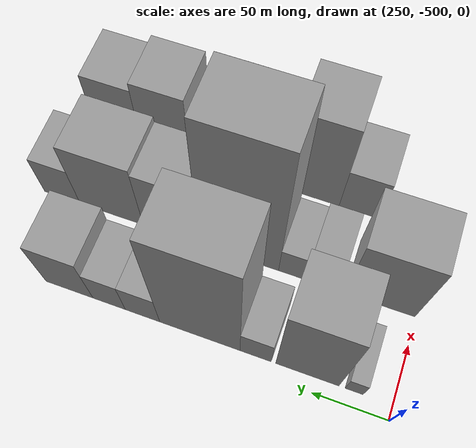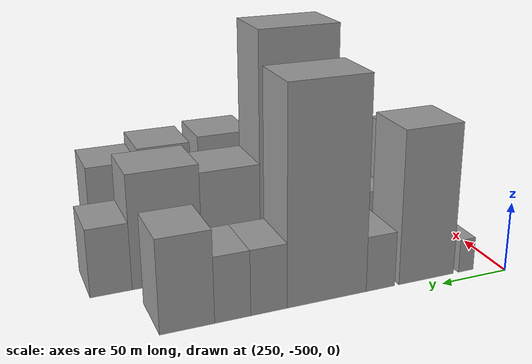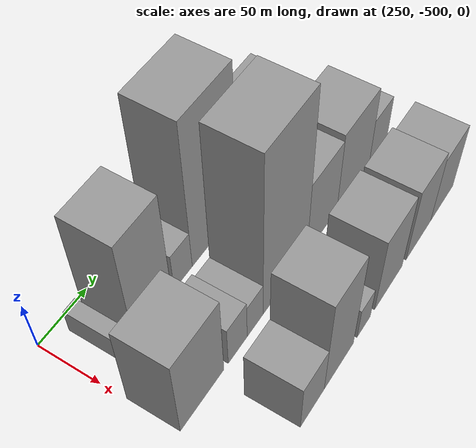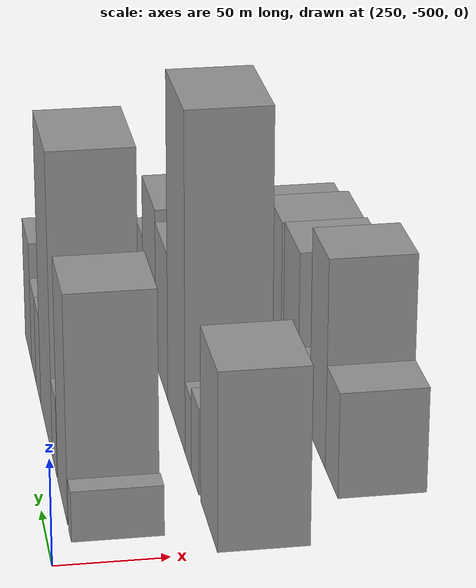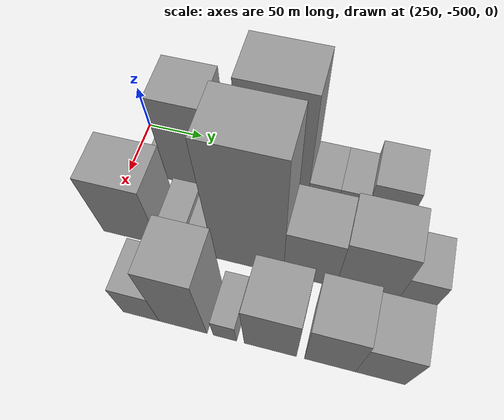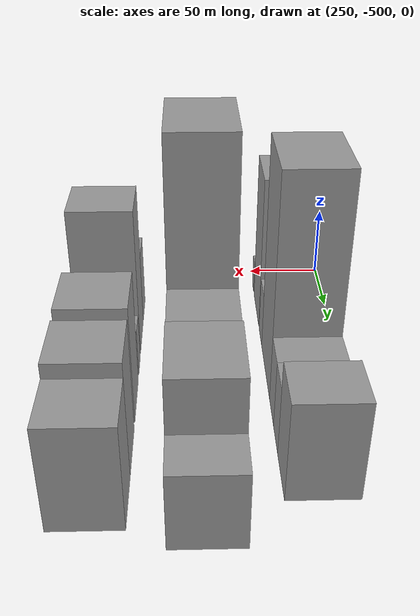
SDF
<sdf version="1.6">
 <world name="default">
  <model name="building_168">
   <static>1</static>
   <pose>280.0000 -474.8378 0 0.000000 0.000000 0.000000</pose>
   <link name="link">
    <pose>0 0 12.00 0 0 0</pose>
    <collision name="collision"><geometry><box><size>40.0000 11.8099 24.0000</size></box></geometry></collision>
    <visual name="visual">
     <cast_shadows>0</cast_shadows>
     <geometry><box><size>40.0000 11.8099 24.0000</size></box></geometry>
     <material>
      <script>
       <uri>model://grey_wall/materials/scripts</uri>
       <uri>model://grey_wall/materials/textures</uri>
       <name>vrc/grey_wall</name>
      </script>
     </material>
    </visual>
   </link>
  </model>
  <model name="building_169">
   <static>1</static>
   <pose>280.0000 -443.8550 0 0.000000 0.000000 0.000000</pose>
   <link name="link">
    <pose>0 0 54.00 0 0 0</pose>
    <collision name="collision"><geometry><box><size>40.0000 42.1556 108.0000</size></box></geometry></collision>
    <visual name="visual">
     <cast_shadows>0</cast_shadows>
     <geometry><box><size>40.0000 42.1556 108.0000</size></box></geometry>
     <material>
      <script>
       <uri>model://grey_wall/materials/scripts</uri>
       <uri>model://grey_wall/materials/textures</uri>
       <name>vrc/grey_wall</name>
      </script>
     </material>
    </visual>
   </link>
  </model>
  <model name="building_170">
   <static>1</static>
   <pose>280.0000 -409.1707 0 0.000000 0.000000 0.000000</pose>
   <link name="link">
    <pose>0 0 19.50 0 0 0</pose>
    <collision name="collision"><geometry><box><size>40.0000 21.2130 39.0000</size></box></geometry></collision>
    <visual name="visual">
     <cast_shadows>0</cast_shadows>
     <geometry><box><size>40.0000 21.2130 39.0000</size></box></geometry>
     <material>
      <script>
       <uri>model://grey_wall/materials/scripts</uri>
       <uri>model://grey_wall/materials/textures</uri>
       <name>vrc/grey_wall</name>
      </script>
     </material>
    </visual>
   </link>
  </model>
  <model name="building_171">
   <static>1</static>
   <pose>280.0000 -370.7430 0 0.000000 0.000000 0.000000</pose>
   <link name="link">
    <pose>0 0 73.50 0 0 0</pose>
    <collision name="collision"><geometry><box><size>40.0000 55.6425 147.0000</size></box></geometry></collision>
    <visual name="visual">
     <cast_shadows>0</cast_shadows>
     <geometry><box><size>40.0000 55.6425 147.0000</size></box></geometry>
     <material>
      <script>
       <uri>model://grey_wall/materials/scripts</uri>
       <uri>model://grey_wall/materials/textures</uri>
       <name>vrc/grey_wall</name>
      </script>
     </material>
    </visual>
   </link>
  </model>
  <model name="building_172">
   <static>1</static>
   <pose>280.0000 -330.7039 0 0.000000 0.000000 0.000000</pose>
   <link name="link">
    <pose>0 0 22.50 0 0 0</pose>
    <collision name="collision"><geometry><box><size>40.0000 24.4357 45.0000</size></box></geometry></collision>
    <visual name="visual">
     <cast_shadows>0</cast_shadows>
     <geometry><box><size>40.0000 24.4357 45.0000</size></box></geometry>
     <material>
      <script>
       <uri>model://grey_wall/materials/scripts</uri>
       <uri>model://grey_wall/materials/textures</uri>
       <name>vrc/grey_wall</name>
      </script>
     </material>
    </visual>
   </link>
  </model>
  <model name="building_173">
   <static>1</static>
   <pose>280.0000 -306.7892 0 0.000000 0.000000 0.000000</pose>
   <link name="link">
    <pose>0 0 22.50 0 0 0</pose>
    <collision name="collision"><geometry><box><size>40.0000 23.3936 45.0000</size></box></geometry></collision>
    <visual name="visual">
     <cast_shadows>0</cast_shadows>
     <geometry><box><size>40.0000 23.3936 45.0000</size></box></geometry>
     <material>
      <script>
       <uri>model://grey_wall/materials/scripts</uri>
       <uri>model://grey_wall/materials/textures</uri>
       <name>vrc/grey_wall</name>
      </script>
     </material>
    </visual>
   </link>
  </model>
  <model name="building_174">
   <static>1</static>
   <pose>280.0000 -277.8731 0 0.000000 0.000000 0.000000</pose>
   <link name="link">
    <pose>0 0 31.50 0 0 0</pose>
    <collision name="collision"><geometry><box><size>40.0000 34.4386 63.0000</size></box></geometry></collision>
    <visual name="visual">
     <cast_shadows>0</cast_shadows>
     <geometry><box><size>40.0000 34.4386 63.0000</size></box></geometry>
     <material>
      <script>
       <uri>model://grey_wall/materials/scripts</uri>
       <uri>model://grey_wall/materials/textures</uri>
       <name>vrc/grey_wall</name>
      </script>
     </material>
    </visual>
   </link>
  </model>
  <model name="building_218">
   <static>1</static>
   <pose>340.0000 -475.2425 0 0.000000 0.000000 0.000000</pose>
   <link name="link">
    <pose>0 0 42.00 0 0 0</pose>
    <collision name="collision"><geometry><box><size>40.0000 47.9797 84.0000</size></box></geometry></collision>
    <visual name="visual">
     <cast_shadows>0</cast_shadows>
     <geometry><box><size>40.0000 47.9797 84.0000</size></box></geometry>
     <material>
      <script>
       <uri>model://grey_wall/materials/scripts</uri>
       <uri>model://grey_wall/materials/textures</uri>
       <name>vrc/grey_wall</name>
      </script>
     </material>
    </visual>
   </link>
  </model>
  <model name="building_219">
   <static>1</static>
   <pose>340.0000 -435.1528 0 0.000000 0.000000 0.000000</pose>
   <link name="link">
    <pose>0 0 21.00 0 0 0</pose>
    <collision name="collision"><geometry><box><size>40.0000 22.1997 42.0000</size></box></geometry></collision>
    <visual name="visual">
     <cast_shadows>0</cast_shadows>
     <geometry><box><size>40.0000 22.1997 42.0000</size></box></geometry>
     <material>
      <script>
       <uri>model://grey_wall/materials/scripts</uri>
       <uri>model://grey_wall/materials/textures</uri>
       <name>vrc/grey_wall</name>
      </script>
     </material>
    </visual>
   </link>
  </model>
  <model name="building_220">
   <static>1</static>
   <pose>340.0000 -414.4388 0 0.000000 0.000000 0.000000</pose>
   <link name="link">
    <pose>0 0 18.00 0 0 0</pose>
    <collision name="collision"><geometry><box><size>40.0000 19.2283 36.0000</size></box></geometry></collision>
    <visual name="visual">
     <cast_shadows>0</cast_shadows>
     <geometry><box><size>40.0000 19.2283 36.0000</size></box></geometry>
     <material>
      <script>
       <uri>model://grey_wall/materials/scripts</uri>
       <uri>model://grey_wall/materials/textures</uri>
       <name>vrc/grey_wall</name>
      </script>
     </material>
    </visual>
   </link>
  </model>
  <model name="building_221">
   <static>1</static>
   <pose>340.0000 -376.3103 0 0.000000 0.000000 0.000000</pose>
   <link name="link">
    <pose>0 0 82.50 0 0 0</pose>
    <collision name="collision"><geometry><box><size>40.0000 57.0288 165.0000</size></box></geometry></collision>
    <visual name="visual">
     <cast_shadows>0</cast_shadows>
     <geometry><box><size>40.0000 57.0288 165.0000</size></box></geometry>
     <material>
      <script>
       <uri>model://grey_wall/materials/scripts</uri>
       <uri>model://grey_wall/materials/textures</uri>
       <name>vrc/grey_wall</name>
      </script>
     </material>
    </visual>
   </link>
  </model>
  <model name="building_222">
   <static>1</static>
   <pose>340.0000 -326.9419 0 0.000000 0.000000 0.000000</pose>
   <link name="link">
    <pose>0 0 37.50 0 0 0</pose>
    <collision name="collision"><geometry><box><size>40.0000 41.7080 75.0000</size></box></geometry></collision>
    <visual name="visual">
     <cast_shadows>0</cast_shadows>
     <geometry><box><size>40.0000 41.7080 75.0000</size></box></geometry>
     <material>
      <script>
       <uri>model://grey_wall/materials/scripts</uri>
       <uri>model://grey_wall/materials/textures</uri>
       <name>vrc/grey_wall</name>
      </script>
     </material>
    </visual>
   </link>
  </model>
  <model name="building_223">
   <static>1</static>
   <pose>340.0000 -282.0660 0 0.000000 0.000000 0.000000</pose>
   <link name="link">
    <pose>0 0 40.50 0 0 0</pose>
    <collision name="collision"><geometry><box><size>40.0000 48.0437 81.0000</size></box></geometry></collision>
    <visual name="visual">
     <cast_shadows>0</cast_shadows>
     <geometry><box><size>40.0000 48.0437 81.0000</size></box></geometry>
     <material>
      <script>
       <uri>model://grey_wall/materials/scripts</uri>
       <uri>model://grey_wall/materials/textures</uri>
       <name>vrc/grey_wall</name>
      </script>
     </material>
    </visual>
   </link>
  </model>
  <model name="building_224">
   <static>1</static>
   <pose>340.0000 -244.2890 0 0.000000 0.000000 0.000000</pose>
   <link name="link">
    <pose>0 0 24.00 0 0 0</pose>
    <collision name="collision"><geometry><box><size>40.0000 27.5103 48.0000</size></box></geometry></collision>
    <visual name="visual">
     <cast_shadows>0</cast_shadows>
     <geometry><box><size>40.0000 27.5103 48.0000</size></box></geometry>
     <material>
      <script>
       <uri>model://grey_wall/materials/scripts</uri>
       <uri>model://grey_wall/materials/textures</uri>
       <name>vrc/grey_wall</name>
      </script>
     </material>
    </visual>
   </link>
  </model>
  <model name="building_270">
   <static>1</static>
   <pose>400.0000 -444.2499 0 0.000000 0.000000 0.000000</pose>
   <link name="link">
    <pose>0 0 25.50 0 0 0</pose>
    <collision name="collision"><geometry><box><size>40.0000 29.0601 51.0000</size></box></geometry></collision>
    <visual name="visual">
     <cast_shadows>0</cast_shadows>
     <geometry><box><size>40.0000 29.0601 51.0000</size></box></geometry>
     <material>
      <script>
       <uri>model://grey_wall/materials/scripts</uri>
       <uri>model://grey_wall/materials/textures</uri>
       <name>vrc/grey_wall</name>
      </script>
     </material>
    </visual>
   </link>
  </model>
  <model name="building_271">
   <static>1</static>
   <pose>400.0000 -410.8538 0 0.000000 0.000000 0.000000</pose>
   <link name="link">
    <pose>0 0 51.00 0 0 0</pose>
    <collision name="collision"><geometry><box><size>40.0000 37.7321 102.0000</size></box></geometry></collision>
    <visual name="visual">
     <cast_shadows>0</cast_shadows>
     <geometry><box><size>40.0000 37.7321 102.0000</size></box></geometry>
     <material>
      <script>
       <uri>model://grey_wall/materials/scripts</uri>
       <uri>model://grey_wall/materials/textures</uri>
       <name>vrc/grey_wall</name>
      </script>
     </material>
    </visual>
   </link>
  </model>
  <model name="building_272">
   <static>1</static>
   <pose>400.0000 -377.9844 0 0.000000 0.000000 0.000000</pose>
   <link name="link">
    <pose>0 0 16.50 0 0 0</pose>
    <collision name="collision"><geometry><box><size>40.0000 18.0066 33.0000</size></box></geometry></collision>
    <visual name="visual">
     <cast_shadows>0</cast_shadows>
     <geometry><box><size>40.0000 18.0066 33.0000</size></box></geometry>
     <material>
      <script>
       <uri>model://grey_wall/materials/scripts</uri>
       <uri>model://grey_wall/materials/textures</uri>
       <name>vrc/grey_wall</name>
      </script>
     </material>
    </visual>
   </link>
  </model>
  <model name="building_273">
   <static>1</static>
   <pose>400.0000 -343.1584 0 0.000000 0.000000 0.000000</pose>
   <link name="link">
    <pose>0 0 39.00 0 0 0</pose>
    <collision name="collision"><geometry><box><size>40.0000 39.6454 78.0000</size></box></geometry></collision>
    <visual name="visual">
     <cast_shadows>0</cast_shadows>
     <geometry><box><size>40.0000 39.6454 78.0000</size></box></geometry>
     <material>
      <script>
       <uri>model://grey_wall/materials/scripts</uri>
       <uri>model://grey_wall/materials/textures</uri>
       <name>vrc/grey_wall</name>
      </script>
     </material>
    </visual>
   </link>
  </model>
  <model name="building_274">
   <static>1</static>
   <pose>400.0000 -298.3274 0 0.000000 0.000000 0.000000</pose>
   <link name="link">
    <pose>0 0 37.50 0 0 0</pose>
    <collision name="collision"><geometry><box><size>40.0000 38.0168 75.0000</size></box></geometry></collision>
    <visual name="visual">
     <cast_shadows>0</cast_shadows>
     <geometry><box><size>40.0000 38.0168 75.0000</size></box></geometry>
     <material>
      <script>
       <uri>model://grey_wall/materials/scripts</uri>
       <uri>model://grey_wall/materials/textures</uri>
       <name>vrc/grey_wall</name>
      </script>
     </material>
    </visual>
   </link>
  </model>
  <model name="building_275">
   <static>1</static>
   <pose>400.0000 -261.2037 0 0.000000 0.000000 0.000000</pose>
   <link name="link">
    <pose>0 0 33.00 0 0 0</pose>
    <collision name="collision"><geometry><box><size>40.0000 36.2306 66.0000</size></box></geometry></collision>
    <visual name="visual">
     <cast_shadows>0</cast_shadows>
     <geometry><box><size>40.0000 36.2306 66.0000</size></box></geometry>
     <material>
      <script>
       <uri>model://grey_wall/materials/scripts</uri>
       <uri>model://grey_wall/materials/textures</uri>
       <name>vrc/grey_wall</name>
      </script>
     </material>
    </visual>
   </link>
  </model>
 </world>
</sdf>
